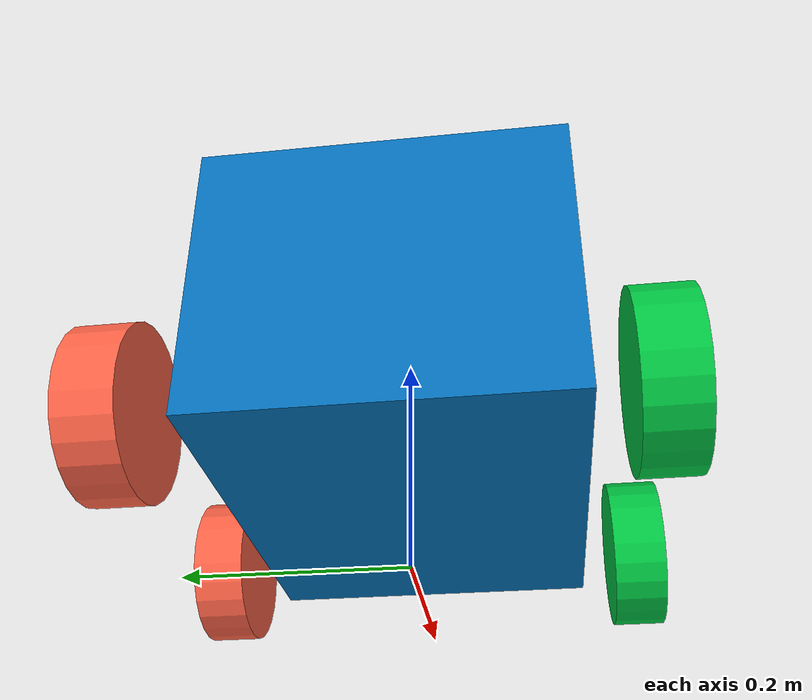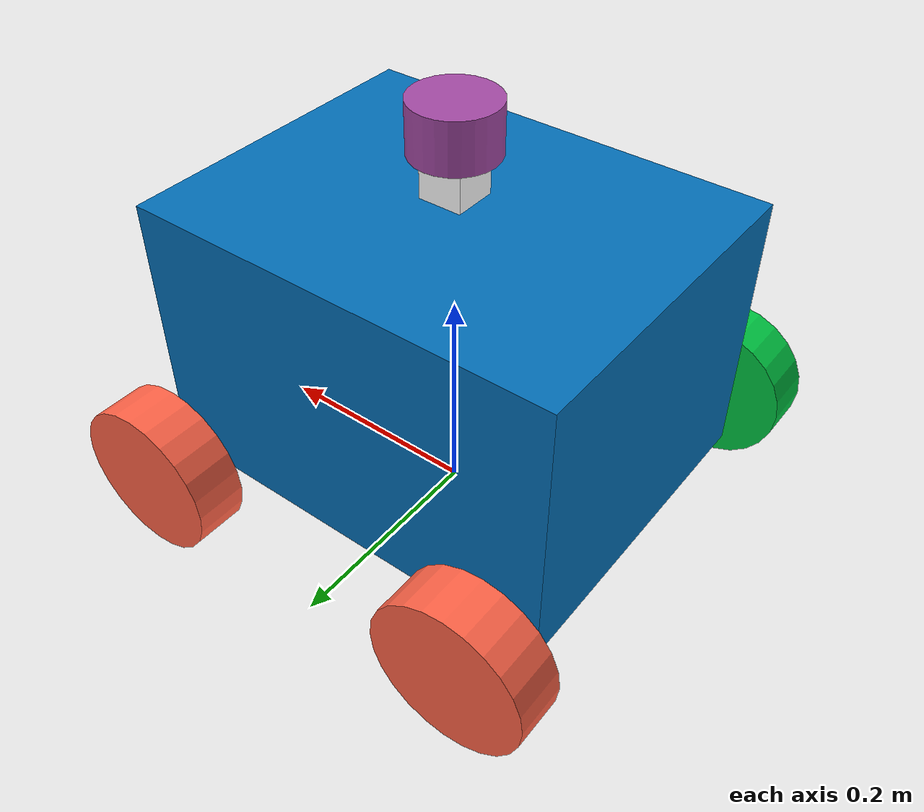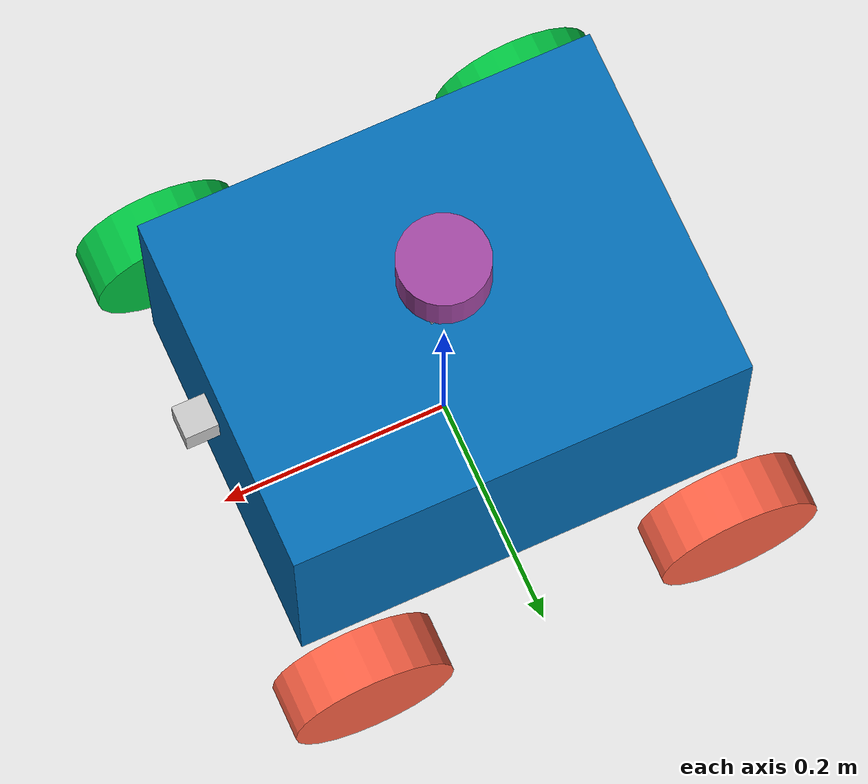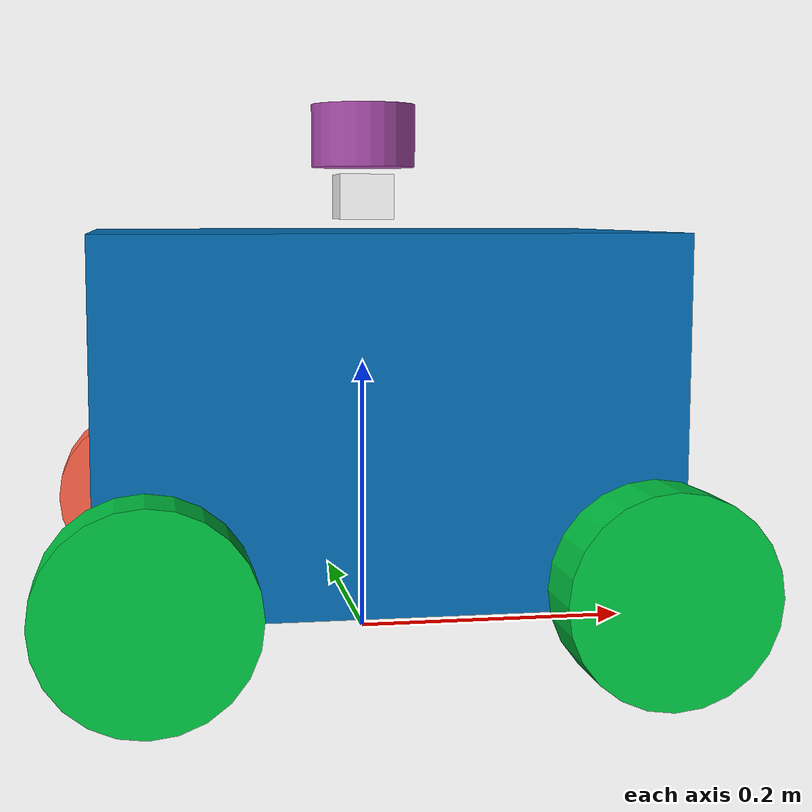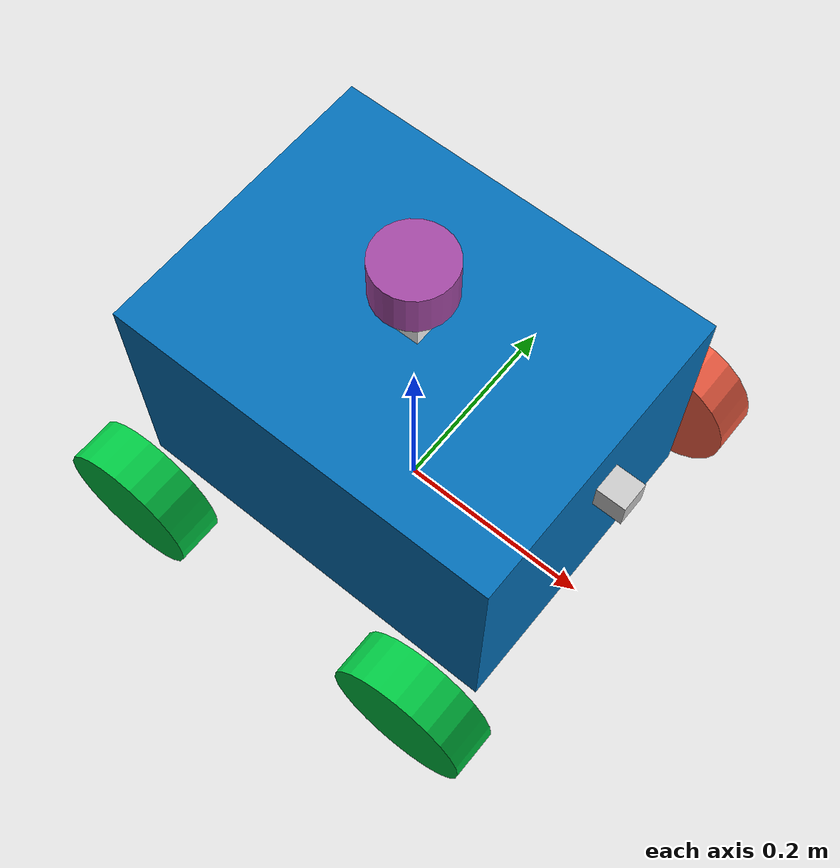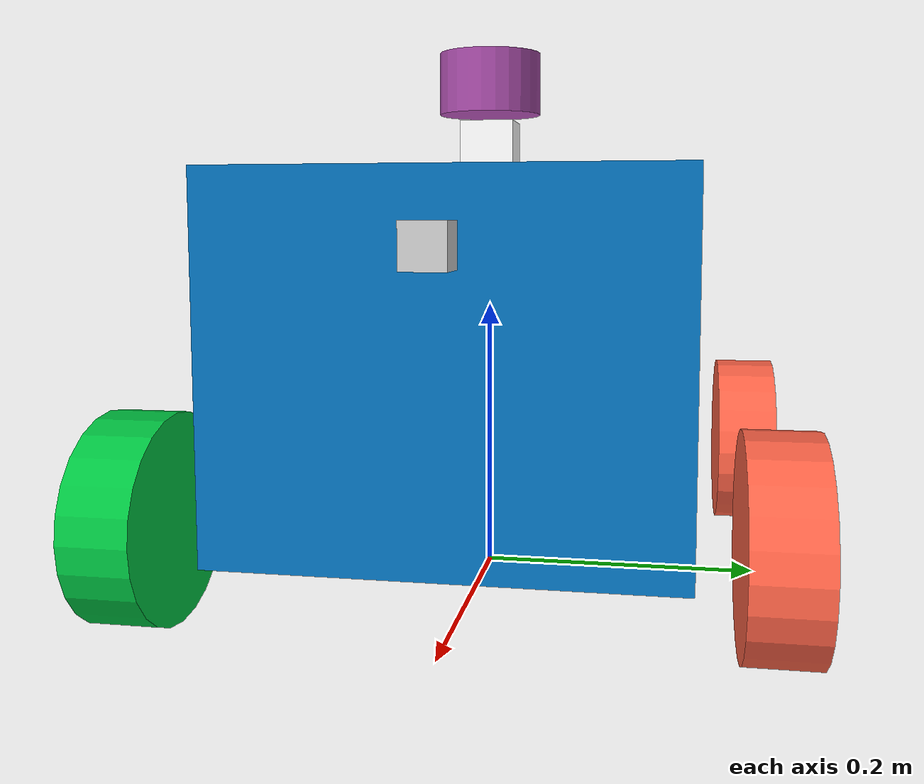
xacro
<?xml version="1.0"?>

<!-- EL siguiente archivo corresponde unicamente al controlador absoluto del disenho del robot -->
<robot xmlns:xacro="http://www.ros.org/wiki/xacro" name="ntarobot">
    <!-- Importe de secciones creadas -->
    <!-- Importe de nucleo de disenho xacro (incluye materiales, calculo de inercia y dimensiones)-->
    <xacro:include filename="$(find diseno_ntarobot)/urdf/ntarobot_core.xacro"/>
    <!-- Importe de descripcion xacro de gazebo -->
    <xacro:include filename="$(find diseno_ntarobot)/urdf/ntarobot_gazebo.xacro"/>
    <!-- Importe de archivo xacro para visualizacion en gazebo -->
    <xacro:include filename="$(find diseno_ntarobot)/urdf/ntarobot_ros_control.xacro"/>
</robot>

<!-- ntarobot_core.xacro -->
<robot xmlns:xacro="http://www.ros.org/wiki/xacro" name = "ntarobot">
    <!-- Seccion de importe de archivos -->
    <!-- Propiedades de materiales y medida de las piezas -->
    <xacro:include filename="$(find diseno_ntarobot)/urdf/ntarobot_matprop.xacro"/>
    <!-- Importe de valores de inercia de las piezas (Falta calcular)-->
    <xacro:include filename="$(find diseno_ntarobot)/urdf/ntarobot_intertial.xacro"/>
    <!-- Fin de importe de archivos -->

    <!-- Inicio de creacion de propiedades nuevas -->
    <xacro:property name="chassis_mass" value="1.0"/>
    <xacro:property name="imu_mass" value="0.05"/>
    <xacro:property name="camera_mass" value="0.05"/>
    <xacro:property name="wheel_mass" value="0.3"/>
    <xacro:property name="lidar_mass" value="0.05"/>
    <!-- Fin de creacion de propiedades -->

    <!-- Seccion de creacion de modelo -->
    <!-- Primero va creada la seccion del footprint del robot, como la base de la estructura entendiendo que es una estructura cuadrada -->
    <link name="base_footprint"/>

    <!-- Seccion de estructura y figuras del robot -->
    <!-- Primera seccion de la caja principal del robot -->
    <link name="base_link">
        <!-- Especificaciones visuales de la primera forma -->
        <visual>
            <!-- Posicion inicial de la figura -->
            <!-- En este caso el valor de 0.0225, es la diferencia entre diferencias del suelo y la altura de la caja-->
            <origin xyz="0 0 ${chassis_width/2 - 0.0225}" rpy="0.0 0.0 0.0"/>
            <!-- Estructura geometrica de la figura en cuestion -->
            <geometry>
                <box size="${chassis_length} ${chassis_height} ${chassis_width}"/>
            </geometry>
            <!-- Control del tipo de material de la carcaza general -->
            <material name="blue"/>
        </visual>
        <!-- Especificaciones de inercia para cada pieza-->
        <collision>
            <origin xyz="0 0 ${chassis_width/2 - 0.0225}" rpy="0.0 0.0 0.0"/>
            <geometry>
                <box size="${chassis_length} ${chassis_height} ${chassis_width}"/>
            </geometry>
        </collision>
        <!-- Calculo de la inercia con las funciones creadas -->
        <xacro:inertial_box mass="${chassis_mass}" x="${chassis_length}" y="${chassis_height}" z="${chassis_width}">
            <origin xyz="0 0 ${chassis_width/2 - 0.0225}" rpy="0.0 0.0 0.0"/>
        </xacro:inertial_box>
    </link>

    <!-- Seccion de creacion de articulacion de la base del robot -->
    <joint name="base_joint" type="fixed">
        <!-- Seccion de relacion jerarquica -->
        <parent link="base_footprint"/>
        <child link="base_link"/>
        <!-- Seccion de origen del chassis del robot -->
        <!-- En este caso el valor de 0.0695, corresponde al valor de diferencia de la caja principal con respecto al suelo-->
        <origin xyz="0.0 0.0 0.0695" rpy="0.0 0.0 0.0"/>
    </joint>

    <!-- Sigue la estructura de las llandas del robot -->
    <!-- Primero disenamos la llanta posterior derecha -->
    <link name="wheel_front_right_link">
        <visual>
            <!-- Corresponde al ppunto de inicio de la rueda -->
            <origin xyz="0.0 0.0 0.0" rpy="1.57 0.0 0.0"/>
            <geometry>
                <!-- Corresponde a las dimensiones precisas de la rueda -->
                <cylinder radius="${wheel_radius}" length="${wheel_thickness}"/>
            </geometry>
            <material name="green"/>
        </visual>
        <!-- Seccion de calculo de colisiiones -->
        <collision>
            <origin xyz="0.0 0.0 0.0" rpy="1.57 0.0 0.0"/>
            <geometry>
                <cylinder radius="${wheel_radius}" length="${wheel_thickness}"/>
            </geometry>
        </collision>
        <!-- Seccion de calculo de inercia -->
        <xacro:inertial_cylinder mass ="${wheel_mass}" length="${wheel_thickness}" radius="${wheel_radius}">
            <origin xyz="0.0 0.0 0.0" rpy="1.57 0.0 0.0"/>
        </xacro:inertial_cylinder>
    </link>

    <!-- Sigue la seccion del joint de la rueda frontal -->
    <joint name="wheel_front_right_joint" type="continuous">
        <!-- Relacion de jerarquia -->
        <parent link="base_link"/>
        <child link="wheel_front_right_link"/>
        <!-- Posicionamiento incial de las ruedas -->
        <axis xyz="0.0 1.0 0.0"/>
        <origin xyz="0.163 -0.2025 0.0" rpy="0.0 0.0 0.0"/>
        <!-- Establece la relaccion de mimica de la articulacion -->
    </joint>

    <!-- Seguido de la llanda trasera derecha, de tal manera que esta este conectada a la derecha posterior -->
    <link name="wheel_back_right_link">
        <visual>
            <!-- Corresponde al ppunto de inicio de la rueda -->
            <origin xyz="0.0 0.0 0.0" rpy="1.57 0.0 0.0"/>
            <geometry>
                <!-- Corresponde a las dimensiones precisas de la rueda -->
                <cylinder radius="${wheel_radius}" length="${wheel_thickness}"/>
            </geometry>
            <material name="green"/>
        </visual>
        <!-- Seccion de calculo de colisiiones -->
        <collision>
            <origin xyz="0.0 0.0 0.0" rpy="1.57 0.0 0.0"/>
            <geometry>
                <cylinder radius="${wheel_radius}" length="${wheel_thickness}"/>
            </geometry>
        </collision>
        <!-- Seccion de calculo de inercia -->
        <xacro:inertial_cylinder mass ="${wheel_mass}" length="${wheel_thickness}" radius="${wheel_radius}">
            <origin xyz="0.0 0.0 0.0" rpy="1.57 0.0 0.0"/>
        </xacro:inertial_cylinder>
    </link>

    <!-- Sigue la seccion del joint de la rueda frontal -->
    <joint name="wheel_back_right_joint" type="continuous">
        <!-- Relacion de jerarquia -->
        <parent link="base_link"/>
        <child link="wheel_back_right_link"/>
        <!-- Posicionamiento incial de las ruedas -->
        <axis xyz="0.0 1.0 0.0"/>
        <origin xyz="-0.163 -0.2025 0.0" rpy="0.0 0.0 0.0"/>
    </joint>

    <!-- Ahora el posicionamiento de las ruedas de la izquierda del robot.-->
    <!-- llanta frontal izquerda -->
    <link name="wheel_front_left_link">
        <visual>
            <!-- Corresponde al ppunto de inicio de la rueda -->
            <origin xyz="0.0 0.0 0.0" rpy="-1.57 0.0 0.0"/>
            <geometry>
                <!-- Corresponde a las dimensiones precisas de la rueda -->
                <cylinder radius="${wheel_radius}" length="${wheel_thickness}"/>
            </geometry>
            <material name="red"/>
        </visual>
        <!-- Seccion de calculo de colisiiones -->
        <collision>
            <origin xyz="0.0 0.0 0.0" rpy="-1.57 0.0 0.0"/>
            <geometry>
                <cylinder radius="${wheel_radius}" length="${wheel_thickness}"/>
            </geometry>
        </collision>
        <!-- Seccion de calculo de inercia -->
        <xacro:inertial_cylinder mass ="${wheel_mass}" length="${wheel_thickness}" radius="${wheel_radius}">
            <origin xyz="0.0 0.0 0.0" rpy="-1.57 0.0 0.0"/>
        </xacro:inertial_cylinder>
    </link>

    <!-- Sigue la seccion del joint de la rueda frontal -->
    <joint name="wheel_front_left_joint" type="continuous">
        <!-- Relacion de jerarquia -->
        <parent link="base_link"/>
        <child link="wheel_front_left_link"/>
        <!-- Posicionamiento incial de las ruedas -->
        <axis xyz="0.0 1.0 0.0"/>
        <origin xyz="0.163 0.2025 0.0" rpy="0.0 0.0 0.0"/>
    </joint>

    <!-- Asi mismo creamos la rueda trasera izquierda-->
    <link name="wheel_back_left_link">
        <visual>
            <!-- Corresponde al ppunto de inicio de la rueda -->
            <origin xyz="0.0 0.0 0.0" rpy="-1.57 0.0 0.0"/>
            <geometry>
                <!-- Corresponde a las dimensiones precisas de la rueda -->
                <cylinder radius="${wheel_radius}" length="${wheel_thickness}"/>
            </geometry>
            <material name="red"/>
        </visual>
        <!-- Seccion de calculo de colisiiones -->
        <collision>
            <origin xyz="0.0 0.0 0.0" rpy="-1.57 0.0 0.0"/>
            <geometry>
                <cylinder radius="${wheel_radius}" length="${wheel_thickness}"/>
            </geometry>
        </collision>
        <!-- Seccion de calculo de inrecia -->
        <xacro:inertial_cylinder mass ="${wheel_mass}" length="${wheel_thickness}" radius="${wheel_radius}">
            <origin xyz="0.0 0.0 0.0" rpy="-1.57 0.0 0.0"/>
        </xacro:inertial_cylinder>
    </link>

    <!-- Sigue la seccion del joint de la rueda trasera -->
    <joint name="wheel_back_left_joint" type="continuous">
        <!-- Relacion de jerarquia -->
        <parent link="base_link"/>
        <child link="wheel_back_left_link"/>
        <!-- Posicionamiento incial de las ruedas -->
        <axis xyz="0.0 1.0 0.0"/>
        <origin xyz="-0.163 0.2025 0.0" rpy="0.0 0.0 0.0"/>
        <!-- Establecemos la relacion entre las 2 -->
    </joint>

    <link name = "imu_link">
        <!-- Especificaciones visuales de la primera forma -->
        <visual>
            <!-- Posicion inicial de la figura -->
            <!-- En este caso el valor de 0.0225, es la diferencia entre diferencias del suelo y la altura de la caja-->
            <origin xyz="0 0 ${imu_width/2}" rpy="0.0 0.0 0.0"/>
            <!-- Estructura geometrica de la figura en cuestion -->
            <geometry>
                <box size="${imu_length} ${imu_height} ${imu_width}"/>
            </geometry>
            <!-- Control del tipo de material de la carcaza general -->
            <material name="white"/>
        </visual>
        <!-- Especificaciones de inercia para cada pieza-->
        <collision>
            <origin xyz="0 0 ${imu_width/2}" rpy="0.0 0.0 0.0"/>
            <geometry>
                <box size="${imu_length} ${imu_height} ${imu_width}"/>
            </geometry>
        </collision>
        <!-- Calculo de la inercia con las funciones creadas -->
        <xacro:inertial_box mass="${imu_mass}" x="${imu_length}" y="${imu_height}" z="${imu_width}">
            <origin xyz="0 0 ${imu_width/2}" rpy="0.0 0.0 0.0"/>
        </xacro:inertial_box>
    </link>

    <joint name="imu_link" type="fixed">
        <parent link="base_link"/>
        <child link="imu_link"/>
        <origin xyz="0.0 0.0 0.236" rpy="0.0 0.0 0.0"/>
        <axis xyz="0.0 0.0 0.0"/>
    </joint>

    <!-- Seccion de anexo de la camara -->
     <link name="camera_link">
        <visual name="">
            <origin xyz="${camera_length/2} 0.0 0.0" rpy="0.0 0.0 0.0"/>
            <geometry>
                <box size="${camera_length} ${camera_height} ${camera_width}"/>
            </geometry>
            <material name="camera-color"/>
        </visual>
     </link>

    <joint name="camera_joint" type="fixed">
        <parent link="base_link"/>
        <child link="camera_link"/>
        <origin xyz="0.20 0.0 0.18" rpy="0.0 0.0 0.0"/>
        <axis xyz="0.0 0.0 0.0"/>
    </joint>

    <!-- Seccion de creacion e ingreso de posicion especifica del lidar -->
     <link name="lidar_link">
        <!-- Primero va la descripcion visual del lidar -->
        <visual>
            <origin xyz="0.0 0.0 0.0" rpy="0.0 0.0 0.0"/>
            <geometry>
                <cylinder radius="${lidar_radius}" length="${lidar_thickness}"/>
            </geometry>
            <material name="lidar-color"/>
        </visual>
        <!-- Finalmente se describe las caracteristicas de colision de lidar -->
        <collision>
            <origin xyz="0.0 0.0 0.0" rpy="0.0 0.0 0.0"/>
            <geometry>
                <cylinder radius="${lidar_radius}" length="${lidar_thickness}"/>
            </geometry>
        </collision>
        <!-- Descripcion inercial del lidar -->
        <xacro:inertial_cylinder mass ="${lidar_mass}" length="${lidar_thickness}" radius="${lidar_radius}">
            <origin xyz="0.0 0.0 0.0" rpy="0.0 0.0 0.0"/>
        </xacro:inertial_cylinder>
     </link>

     <joint name="lidar_joint" type="fixed">
        <parent link="base_link"/>
        <child link="lidar_link"/>
        <origin xyz="0.0 0.0 0.296" rpy="0.0 0.0 3.14159"/>
    </joint>
</robot>

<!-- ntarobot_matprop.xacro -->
<robot xmlns:xacro="http://www.ros.org/wiki/xacro" name = "ntarobot">
    <!-- Este archivo alberga unicamente los valores de propiedades y materiales para el nucleo del robot -->

    <!-- Seccion para creacion de propiedades de links -->
    <xacro:property name="chassis_length" value="0.3920"/>
    <xacro:property name="chassis_height" value="0.3045"/>
    <xacro:property name="chassis_width" value="0.2500"/>
    <!-- Seccion de valores de medidas de ruedas -->
    <xacro:property name="wheel_radius" value="0.07"/>
    <xacro:property name="wheel_thickness" value="0.047"/>
    <xacro:property name="wheel_offset_x" value="0.226"/>
    <xacro:property name="wheel_offset_y" value="0.175"/>
    <xacro:property name="wheel_offset_z" value="0.01"/>
    <!-- Seccion de propiedades de medidas de imu -->
    <xacro:property name="imu_length" value="0.0394"/>
    <xacro:property name="imu_height" value="0.0394"/>
    <xacro:property name="imu_width" value="0.0324"/>
    <!-- Propiedades de la camara -->
    <xacro:property name="camera_length" value="0.0285"/>
    <xacro:property name="camera_height" value="0.0285"/>
    <xacro:property name="camera_width" value="0.0285"/>
    <!-- Seccion de dimensiones de lidar -->
    <xacro:property name="lidar_radius" value="0.0379"/>
    <xacro:property name="lidar_thickness" value="0.045"/>
    <!-- Fin de seccion de propieades -->

    <!-- Seccion de colores -->
    <material name = "blue">
        <color rgba = "${3/255} ${111/255} ${183/255} 1"/>
    </material>

    <material name="black">
        <color rgba="0 0 0 1"/>
    </material>

    <material name="red">
        <color rgba="${255/255} ${99/255} ${71/255} 1"/>
    </material>

    <material name="green">
        <color rgba="${0/255} ${198/255} ${66/255} 1"/>
    </material>

    <material name="white">
        <color rgba="${255/255} ${255/255} ${255/255} 1"/>
    </material>

    <material name="camera-color">
        <color rgba="${201/255} ${201/255} ${201/255} 1"/>
    </material>

    <material name="lidar-color">
        <color rgba="${163/255} ${73/255} ${164/255} 1"/>
    </material>
    <!-- fin de seccion de colores -->
</robot>

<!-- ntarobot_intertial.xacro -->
<!-- Este documento alberga las funciones para el calculo de inercia de acuerdo a las dimensiones de cada pieza -->
<robot xmlns:xacro="http://www.ros.org/wiki/xacro" name = "ntarobot">
    <!-- Calculo de inercia para cajas, funcion para la base central del robot -->
    <xacro:macro name="inertial_box" params="mass x y z *origin">
        <inertial>
            <xacro:insert_block name="origin"/>
            <mass value="${mass}" />
            <inertia ixx="${(1/12) * mass * (y*y+z*z)}" ixy="0.0" ixz="0.0"
                    iyy="${(1/12) * mass * (x*x+z*z)}" iyz="0.0"
                    izz="${(1/12) * mass * (x*x+y*y)}" />
        </inertial>
    </xacro:macro>

    <!-- Calculo de inercia para cilindros, especificamente las ruedas del robot -->
    <xacro:macro name="inertial_cylinder" params="mass length radius *origin">
        <inertial>
            <xacro:insert_block name="origin"/>
            <mass value="${mass}" />
            <inertia ixx="${(1/12) * mass * (3*radius*radius + length*length)}" ixy="0.0" ixz="0.0"
                    iyy="${(1/12) * mass * (3*radius*radius + length*length)}" iyz="0.0"
                    izz="${(1/2) * mass * (radius*radius)}" />
        </inertial>
    </xacro:macro>
</robot>
